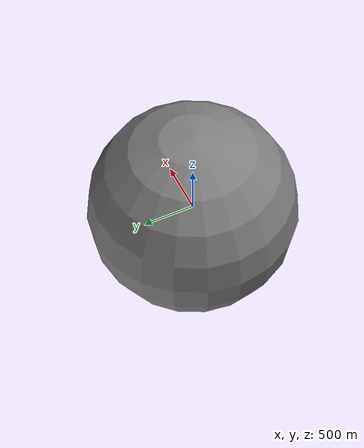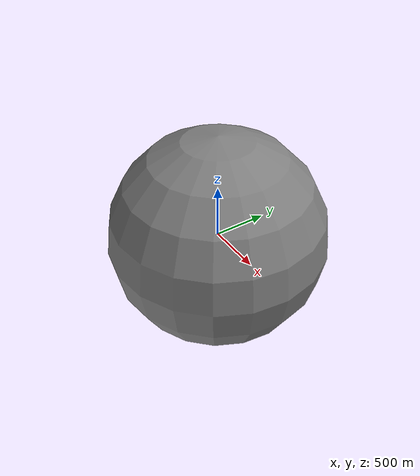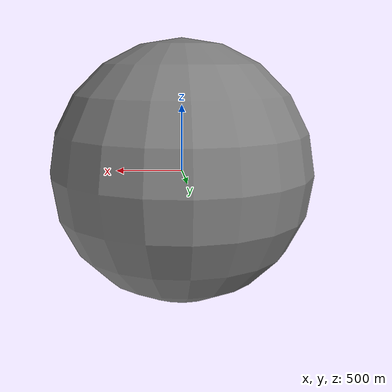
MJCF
<mujoco>
  <option gravity="0 0 -9.81" />
  <worldbody>
    <body name="object_2" pos="2 0 0">
      <geom type="plane" size="3 3 0.1" friction="1 1 1" rgba="0.4 0.4 0.4 1" />
    </body>
    <body name="object_1" pos="0 0 0.5">
      <geom type="box" size="0.3 0.3 0.3" mass="1" rgba="0 0 1 1" />
      <joint type="free" name="object_1_joint" />
    </body>
    <body name="object_4" pos="0 0 2" />
  <body name="smooth_surface" pos="3.0 0.0 0.0"><geom type="sphere" size="1000.0" rgba="0.5 0.5 0.5 1" /></body></worldbody>
</mujoco>
